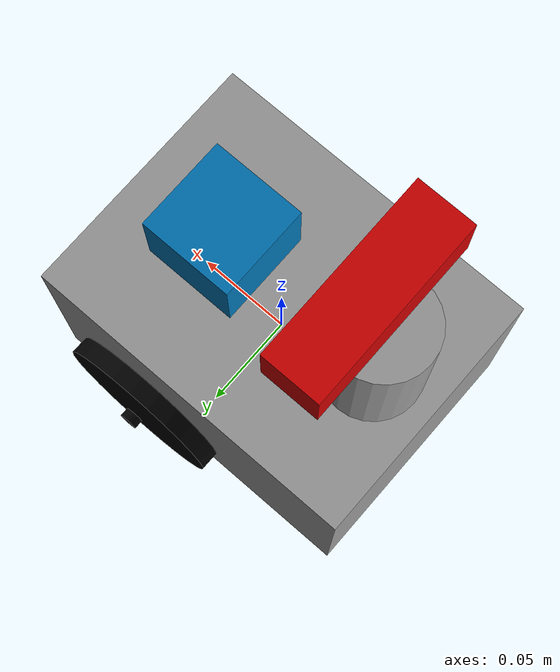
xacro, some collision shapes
<?xml version="1.0"?>
<robot name="capo" xmlns:xacro="http://www.ros.org/wiki/xacro">
    <xacro:include filename="$(find topnav_bot_description)/urdf/materials.xacro" />

    <xacro:arg name="use_real_camera" default="false" />

    <xacro:property name="scale" value="1.0" />
    <xacro:property name="caseWidth" value="${0.135 * scale}" />
    <xacro:property name="caseLength" value="${0.18 * scale}" />
    <xacro:property name="caseHeight" value="${0.12 * scale}" />
    <xacro:property name="caseWeight" value="${1.0 * scale}"/>

    <xacro:property name="batteryWidth" value="${0.13 * scale}" />
    <xacro:property name="batteryLength" value="${0.04 * scale}" />
    <xacro:property name="batteryHeight" value="${0.05 * scale}" />
    <xacro:property name="batteryWeight" value="${0.5 * scale}"/>
    <xacro:property name="batteryOffset" value="${-0.065 * scale}" />
    <xacro:property name="batteryHeightOffset" value="${-0.03 * scale}" />

    <xacro:property name="wheelDiam" value="${0.09 * scale}" />
    <xacro:property name="wheelWidth" value="${0.01 * scale}"/>
    <xacro:property name="wheelCaseGap" value="${0.0008 * scale}"/>
    <xacro:property name="wheelToMiddleWidth" value="${(caseWidth + wheelWidth)/2 + wheelCaseGap}"/>
    <xacro:property name="wheelToMiddleLength" value="${caseLength/2 - 0.06 * scale}"/>
    <xacro:property name="wheelWeight" value="${0.15 * scale}" />
    <xacro:property name="smallWheelWeight" value="${0.001 * scale}" />

    <xacro:property name="headDiam" value="${0.05 * scale}" />
    <xacro:property name="headHeight" value="${0.08 * scale}" />
    <xacro:property name="headWeight" value="${0.1 * scale}" />
    <xacro:property name="headOffset" value="${0.07 * scale}" />

    <xacro:property name="cameraWidth" value="${0.095 * scale}" />
    <xacro:property name="cameraHeight" value="${0.03 * scale}" />
    <xacro:property name="cameraDepth" value="${0.03 * scale}" />

    <xacro:property name="hokuyoSide" value="${0.05 * scale}" />
    <xacro:property name="hokuyoHeight" value="${0.07 * scale}" />
    <xacro:property name="hokuyoOffset" value="${0.03 * scale}" />
    <xacro:property name="hokuyoHeightOffset" value="${0.03 * scale}" />

    <xacro:property name="casterWheelRadius" value="${0.01 * scale}"/>
    <xacro:property name="casterWheelWeight" value="${0.05 * scale}"/>

    <xacro:property name="laserSamplesCount" value="61"/>
    <xacro:property name="laserMinAngle" value="${-2*pi/3}"/>
    <xacro:property name="laserMaxAngle" value="${2*pi/3}"/>
    <xacro:property name="visualizeLaser" value="false" />

    <xacro:if value="$(arg use_real_camera)">
        <xacro:property name="cameraFileName" value="camera_real.gazebo" />
    </xacro:if>
    <xacro:unless value="$(arg use_real_camera)">
        <xacro:property name="cameraFileName" value="camera.gazebo" />
    </xacro:unless>

    <xacro:macro name="default_inertial" params="mass">
        <inertial>
            <mass value="${mass}" />
            <inertia ixx="1.0" ixy="0.0" ixz="0.0"
                     iyy="1.0" iyz="0.0"
                     izz="1.0" />
        </inertial>
    </xacro:macro>

    <link name="base_link">
        <visual>
            <geometry>
                <box size="${caseLength} ${caseWidth} ${caseHeight}"/>
            </geometry>
            <material name="gray"/>
        </visual>

        <inertial>
            <xacro:property name="d" value="${caseLength}" />
            <xacro:property name="w" value="${caseWidth}" />
            <xacro:property name="h" value="${caseHeight}" />
            <xacro:property name="m" value="${caseWeight}" />
            <mass value="${m}" />
            <inertia ixx="${(1/12)*(h*h+w*w)}" ixy="0.0" ixz="0.0"
                     iyy="${(1/12)*(d*d+h*h)}" iyz="0.0"
                     izz="${(1/12)*(w*w+d*d)}" />
        </inertial>

        <collision>
            <geometry>
                <box size="${caseLength} ${caseWidth} ${caseHeight}"/>
            </geometry>
        </collision>
    </link>
    <gazebo reference="base_link">
        <material>Gazebo/Wood</material>
    </gazebo>

    <!--battery -->
    <link name ="battery">
        <visual>
            <geometry>
                <box size="${batteryLength} ${batteryWidth} ${batteryHeight}"/>
            </geometry>
            <material name="gray"/>
        </visual>

        <inertial>
            <xacro:property name="d" value="${batteryLength}" />
            <xacro:property name="w" value="${batteryWidth}" />
            <xacro:property name="h" value="${batteryHeight}" />
            <xacro:property name="m" value="${batteryWeight}" />
            <mass value="${m}" />
           <inertia ixx="${(1/12)*(h*h+w*w)}" ixy="0.0" ixz="0.0"
                     iyy="${(1/12)*(d*d+h*h)}" iyz="0.0"
                     izz="${(1/12)*(w*w+d*d)}" />
        </inertial>

        <collision>
            <geometry>
                <box size="${batteryLength} ${batteryWidth} ${batteryHeight}"/>
            </geometry>
        </collision>
    </link>
    <joint name="base_battery_joint" type="fixed">
        <axis rpy="0 0 0" xyz="0 1 0"/>
        <parent link="base_link"/>
        <child link="battery"/>
        <origin rpy="0 0 0" xyz="${batteryOffset} 0.0 ${batteryHeightOffset}"/>
    </joint>
    <gazebo reference="battery">
        <material>Gazebo/Blue</material>
    </gazebo>
    <!-- battery -->

    <xacro:include filename="../capo/head/capo.head.xacro" />

    <transmission name="head_swivel_trans">
        <type>transmission_interface/SimpleTransmission</type>
        <actuator name="$head_swivel_motor">
            <mechanicalReduction>1</mechanicalReduction>
        </actuator>
        <joint name="head_swivel">
            <hardwareInterface>hardware_interface/PositionJointInterface</hardwareInterface>
        </joint>
    </transmission>

    <gazebo reference="head">
        <!-- generates warn  Element[mu], child of element[link] not defined in SDF. Ignoring[mu]-->
        <!-- http://wiki.ros.org/urdf/Tutorials/Using%20a%20URDF%20in%20Gazebo -->
        <mu1 value="200.0"/>
        <mu2 value="100.0"/>
        <kp value="1000000.0" />
        <kd value="1.0" />
        <material>Gazebo/Grey</material>
    </gazebo>
    <!-- /head -->

    <xacro:macro name="wheel" params="prefix suffix origX origY origZ mass diam width">
        <link name="${prefix}_${suffix}_wheel">
            <visual>
                <origin rpy="${pi/2} 0 0" xyz="0 0 0"/>
                <geometry>
                    <cylinder length="${width}" radius="${diam/2}"/>
                </geometry>
                <material name="black"/>
            </visual>
            <collision>
                <origin rpy="${pi/2} 0 0" xyz="0 0 0"/>
                <geometry>
                    <cylinder length="${width}" radius="${diam/2}"/>
                </geometry>
            </collision>
            <inertial>
                <xacro:property name="r" value="${diam/2}" />
                <xacro:property name="h" value="${width}" />
                <xacro:property name="m" value="${mass}" />

                <mass value="${m}" />
                <inertia ixx="${(1/12)*(3*r*r+h*h)}" ixy="0.0" ixz="0.0"
                         iyy="${(1/2)*r*r}" iyz="0.0"
                         izz="${(1/12)*(3*r*r+h*h)}"/>
            </inertial>
        </link>
        <joint name="${prefix}_${suffix}_wheel_joint" type="continuous">
            <axis rpy="0 0 0" xyz="0 1 0"/>
            <parent link="base_link"/>
            <child link="${prefix}_${suffix}_wheel"/>
            <origin rpy="0 0 0" xyz="${origX} ${origY} ${origZ}"/>
        </joint>

        <transmission name="${prefix}_${suffix}_wheel_trans">
            <type>transmission_interface/SimpleTransmission</type>
            <actuator name="${prefix}_${suffix}_wheel_motor">
                <mechanicalReduction>1</mechanicalReduction>
            </actuator>
            <joint name="${prefix}_${suffix}_wheel_joint">
                <hardwareInterface>hardware_interface/VelocityJointInterface</hardwareInterface>
            </joint>
        </transmission>

        <gazebo reference="${prefix}_${suffix}_wheel">
            <!-- generates warn  Element[mu], child of element[link] not defined in SDF. Ignoring[mu]-->
            <!-- http://wiki.ros.org/urdf/Tutorials/Using%20a%20URDF%20in%20Gazebo -->
            <mu1 value="40.0"/>
            <mu2 value="20.0"/>
            <kp value="10000000.0" />
            <kd value="1.0" />
            <material>Gazebo/Wood</material>
        </gazebo>
    </xacro:macro>

    <xacro:wheel prefix="rear" suffix="left" origX="${wheelToMiddleLength}" origY="${wheelToMiddleWidth + wheelWidth}" origZ="-0.025" mass="${smallWheelWeight}" diam="0.01" width="0.005"/>
    <xacro:wheel prefix="rear" suffix="right" origX="${wheelToMiddleLength}" origY="${-wheelToMiddleWidth - wheelWidth}" origZ="-0.025" mass="${smallWheelWeight}" diam="0.01" width="0.005"/>
    <xacro:wheel prefix="front" suffix="left" origX="${wheelToMiddleLength}" origY="${wheelToMiddleWidth}" origZ="-0.025" mass="${wheelWeight}" diam="${wheelDiam}" width="${wheelWidth}"/>
    <xacro:wheel prefix="front" suffix="right" origX="${wheelToMiddleLength}" origY="${-wheelToMiddleWidth}" origZ="-0.025" mass="${wheelWeight}" diam="${wheelDiam}" width="${wheelWidth}"/>

    <xacro:macro name="caster_wheel" params="prefix origX origY origZ">
        <link name="${prefix}_caster_wheel">
            <visual>
                <geometry>
                    <sphere radius="${casterWheelRadius}"/>
                </geometry>
                <material name="gray"/>
            </visual>

            <inertial>
                <xacro:property name="r" value="${casterWheelRadius}"/>
                <xacro:property name="m" value="${casterWheelWeight}"/>
                <mass value="${m}"/>
                <inertia ixx="${(2/5)*r*r}" ixy="0.0" ixz="0.0"
                         iyy="${(2/5)*r*r}" iyz="0.0"
                         izz="${(2/5)*r*r}"/>
            </inertial>
            <collision>
                <geometry>
                    <sphere radius="${casterWheelRadius}"/>
                </geometry>
                <surface>
                    <friction>
                        <ode>
                            <mu>0</mu>
                            <mu2>0</mu2>
                            <slip1>1.0</slip1>
                            <slip2>1.0</slip2>
                        </ode>
                    </friction>
                </surface>
            </collision>
        </link>
        <joint name="base_${prefix}_caster_wheel_joint" type="fixed">
            <axis rpy="0 0 0" xyz="0 1 0"/>
            <parent link="base_link"/>
            <child link="${prefix}_caster_wheel"/>
            <origin rpy="0 0 0" xyz="${origX} ${origY} ${origZ}"/>
        </joint>
    </xacro:macro>

    <xacro:caster_wheel prefix="center" origX="-0.08" origY="0.0" origZ="${scale * -0.06}"/>

    <gazebo>
        <plugin name="gazebo_ros_control" filename="libgazebo_ros_control.so">
            <robotNamespace>/</robotNamespace>
        </plugin>
    </gazebo>

</robot>

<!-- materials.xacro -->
<robot name="capo">

  <material name="black">
    <color rgba="0.0 0.0 0.0 1.0"/>
  </material>

  <material name="blue">
    <color rgba="0.0 0.0 0.8 1.0"/>
  </material>

  <material name="green">
    <color rgba="0.0 0.8 0.0 1.0"/>
  </material>

  <material name="grey">
    <color rgba="0.6 0.6 0.6 1.0"/>
  </material>

  <material name="orange">
    <color rgba="${255/255} ${108/255} ${10/255} 1.0"/>
  </material>

  <material name="brown">
    <color rgba="${222/255} ${207/255} ${195/255} 1.0"/>
  </material>

  <material name="red">
    <color rgba="0.8 0.0 0.0 1.0"/>
  </material>

  <material name="white">
    <color rgba="1.0 1.0 1.0 1.0"/>
  </material>

</robot>

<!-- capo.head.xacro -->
<robot xmlns:xacro="http://www.ros.org/wiki/xacro">
    <!-- head -->
    <xacro:property name="camera_link" value="0.05"/>

    <link name="head">
        <visual>
            <origin rpy="0 0 0" xyz="0 0 0"/>
            <geometry>
                <cylinder length="${headHeight}" radius="${headDiam/2}"/>
            </geometry>
        </visual>
        <collision>
            <origin rpy="0 0 0" xyz="0 0 0"/>
            <geometry>
                <cylinder length="${headHeight}" radius="${headDiam/2}"/>
            </geometry>
        </collision>
        <inertial>
            <xacro:property name="r" value="${headDiam/2}"/>
            <xacro:property name="h" value="${headHeight}"/>

            <!-- TODO solve the problem of the head inertia-->
            <xacro:property name="mass" value="${headWeight * 0.01}"/>

            <mass value="${mass}"/>
            <inertia ixx="${(1/12)*mass*(3*r*r+h*h)}" ixy="0.0" ixz="0.0"
                     iyy="${(1/12)*mass*(3*r*r+h*h)}" iyz="0.0"
                     izz="${0.5*mass*r*r}"/>
        </inertial>

    </link>

    <joint name="head_swivel" type="revolute">
        <parent link="base_link"/>
        <child link="head"/>
        <axis xyz="0 0 1"/>
        <origin xyz="${caseLength / 2 - (hokuyoSide + headDiam / 2 + headOffset)} 0 ${caseHeight / 2 + headHeight / 2}"/>
        <limit effort="30"
               velocity="1.0"
               lower="${-pi}"
               upper="${pi}"/>
        <dynamics damping="0.0" friction="0.0"/>
    </joint>
    <!-- gazebo - head -->

    <xacro:include filename="camera.xacro"/>
    <xacro:include filename="hokuyo.xacro"/>
</robot>

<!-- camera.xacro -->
<robot xmlns:xacro="http://www.ros.org/wiki/xacro">
    <joint name="camera_joint" type="fixed">
        <axis xyz="0 1 0"/>
        <origin xyz="${headDiam/2 - cameraDepth/2} 0 ${headHeight/2 + cameraHeight/2}" rpy="0 0 0"/>
        <parent link="head"/>
        <child link="camera_link"/>
    </joint>

    <!--Camera-->
    <link name="camera_link">
        <collision>
            <origin xyz="0 0 0" rpy="0 0 0"/>
            <geometry>
                <box size="${cameraDepth} ${cameraWidth} ${cameraHeight}"/>
            </geometry>
        </collision>

        <visual>
            <origin xyz="0 0 0" rpy="0 0 0"/>
            <geometry>
                <box size="${cameraDepth} ${cameraWidth} ${cameraHeight}"/>
            </geometry>
            <material name="red"/>
        </visual>

        <inertial>
            <mass value="1e-5"/>
            <origin xyz="0 0 0" rpy="0 0 0"/>
            <inertia ixx="1e-6" ixy="0.0" ixz="0.0"
                     iyy="1e-6" iyz="0.0"
                     izz="1e-6" />
        </inertial>
    </link>

    <xacro:include filename="${cameraFileName}" />
</robot>

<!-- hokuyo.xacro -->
<robot xmlns:xacro="http://www.ros.org/wiki/xacro">
    <joint name="hokuyo_joint" type="fixed">
        <axis xyz="0 1 0"/>
        <origin xyz="${caseLength/2 - (hokuyoSide/2 + hokuyoOffset)} 0 ${caseHeight/2 + hokuyoHeight/2 - hokuyoHeightOffset}" rpy="0 0 0"/>
        <parent link="base_link"/>
        <child link="hokuyo_link"/>
    </joint>

    <!-- Hokuyo Laser -->
    <link name="hokuyo_link">
        <collision>
            <origin xyz="0 0 0" rpy="0 0 0"/>
            <geometry>
                <box size="${hokuyoSide} ${hokuyoSide} ${hokuyoHeight}"/>
            </geometry>
        </collision>

        <visual>
            <origin xyz="0 0 0" rpy="0 0 0"/>
            <geometry>
                <mesh filename="package://topnav_bot_description/meshes/hokuyo.dae"/>
            </geometry>
        </visual>

        <inertial>
            <mass value="1e-5"/>
            <origin xyz="0 0 0" rpy="0 0 0"/>
            <inertia ixx="1e-6" ixy="0" ixz="0" iyy="1e-6" iyz="0" izz="1e-6"/>
        </inertial>
    </link>

    <xacro:include filename="hokuyo.gazebo"/>
</robot>
